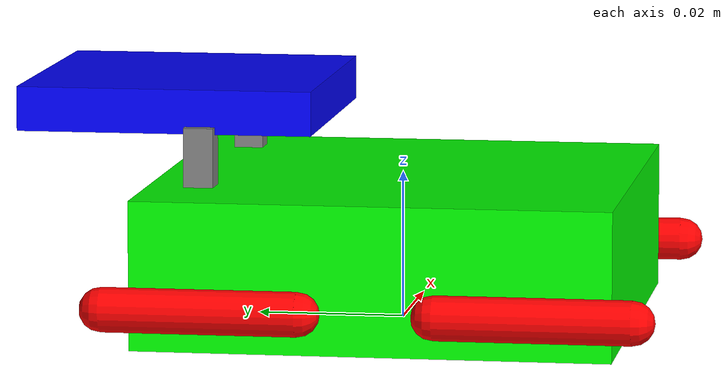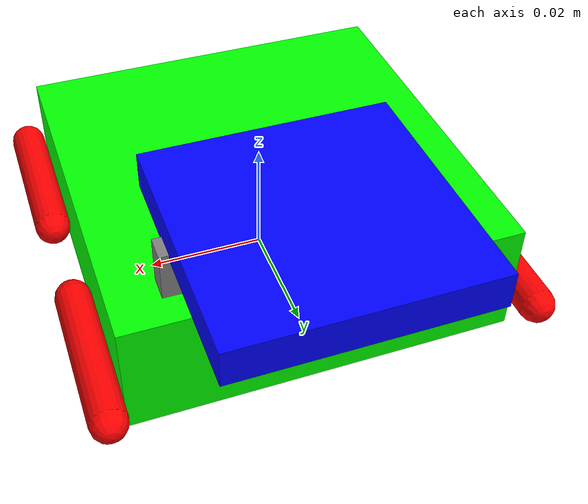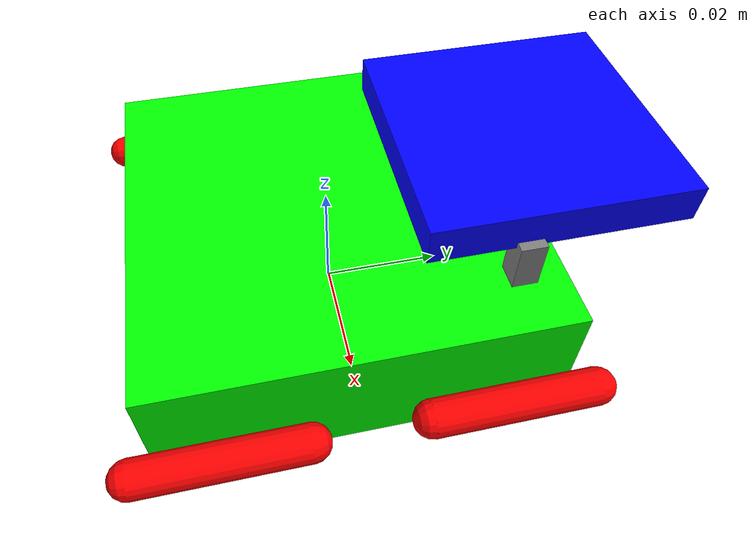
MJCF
<mujoco model="v0">
	<compiler inertiafromgeom="false"/>
	<default>
	  <joint armature="0" frictionloss="0"/>
	  <position kp="10"/>
        </default>

	<option gravity="0 0 -9.8" integrator="Euler" timestep="0.005"/>
	<size nstack="3000"/>

        <asset>
          <texture type="skybox" builtin="gradient" rgb1=".3 .5 .7" rgb2="0 0 0" width="32" height="512"/>
          <texture name="grid" type="2d" builtin="checker" width="512" height="512" rgb1=".1 .2 .3" rgb2=".2 .3 .4"/>
          <material name="grid" texture="grid" texrepeat="1 1" texuniform="true" reflectance=".2"/>
        </asset>

    <worldbody>
	<body name="base" pos="0 0 0.01">
            <geom name="base" pos="0 0 0" type="box" size="0.032 0.032 0.01" euler="0 0 0" mass="7" rgba="0 1 0 1" friction="2 1 0.0001"/>
	    <inertial pos="0 0 0" mass="6.9"/>

	    <body name="leg_rb" pos="0.035 -0.022 -0.004">
                <joint axis="1 0 0" name="servo_rb" limited="true" pos="0 0 0" range="0 180" type="hinge" damping="1"/>
		<geom fromto="0 -0.013 0 0 0.013 0" size="0.003 0.002" type="capsule" mass="0.001" rgba="1 0 0 1" friction="0.1 1 0.0001"/>
		<inertial pos="0.035 -0.022 0.002" mass="0.001"/>
            </body>

	    <body name="leg_rf" pos="0.035 0.022 -0.004">
                <joint axis="1 0 0" name="servo_rf" limited="true" pos="0 0 0" range="-180 0" type="hinge" damping="1"/>
		<geom fromto="0 -0.013 0 0 0.013 0" size="0.003 0.002" type="capsule" mass="0.001" rgba="1 0 0 1" friction="0.1 1 0.0001"/>
		<inertial pos="0.035 0.022 0.002" mass="0.001"/>
            </body>

	    <body name="leg_lb" pos="-0.035 -0.022 -0.004">
                <joint axis="-1 0 0" name="servo_lb" limited="true" pos="0 0 0" range="0 180" type="hinge" damping="1"/>
		<geom fromto="0 -0.013 0 0 0.013 0" size="0.003 0.002" type="capsule" mass="0.001" rgba="1 0 0 1" friction="0.1 1 0.0001"/>
		<inertial pos="-0.035 -0.022 0.002" mass="0.001"/>
            </body>

	    <body name="leg_lf" pos="-0.035 0.022 -0.004">
                <joint axis="-1 0 0" name="servo_lf" limited="true" pos="0 0 0" range="-180 0" type="hinge" damping="1"/>
		<geom fromto="0 -0.013 0 0 0.013 0"  size="0.003 0.002" type="capsule" mass="0.001" rgba="1 0 0 1" friction="0.1 1 0.0001"/>
		<inertial pos="-0.035 0.022 0.002" mass="0.001"/>
	    </body>

            <!-- IMU sensor box and holding bracket-->
            <body name="IMU" pos="0.0025 0.03 0.02" euler="0 0 0">
		    <geom name="IMU" pos="0 0 0" type="box" size="0.02 0.02 0.003" euler="0 0 0" rgba="0 0 1 1"/>
		    <joint armature="0" damping="0" limited="false" axis="0 0 0" name="IMUroot" pos="0 0 0" stiffness="0" type="fixed"/>
            </body>
	    <body name="col_one" pos="0.022 0.025 0.013" euler="0 0 0" >
		    <geom name="col_one" pos="0 0 0" type="box" size="0.002 0.002 0.005" euler="0 0 0"/>
		    <joint armature="0" damping="0" limited="false" axis="0 0 0" name="col_one_root" pos="0 0 0" stiffness="0" type="fixed"/>
	    </body>
	    <body name="col_two" pos="-0.017 0.025 0.013" euler="0 0 0" >
		    <geom name="col_two" pos="0 0 0" type="box" size="0.002 0.002 0.005" euler="0 0 0"/>
		    <joint armature="0" damping="0" limited="false" axis="0 0 0" name="col_two_root" pos="0 0 0" stiffness="0" type="fixed"/>
	    </body>

        </body>
    </worldbody>

    <actuator>
        <position joint="servo_rb" name="servo_rb"/>
        <position joint="servo_rf" name="servo_rf"/>
        <position joint="servo_lb" name="servo_lb"/>
        <position joint="servo_lf" name="servo_lf"/>
    </actuator>

</mujoco>
